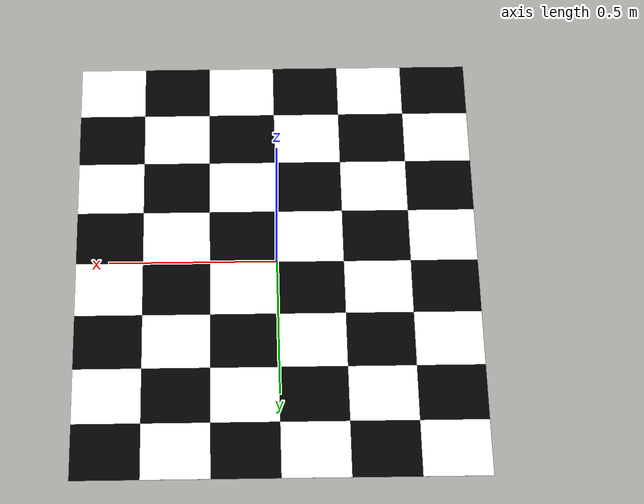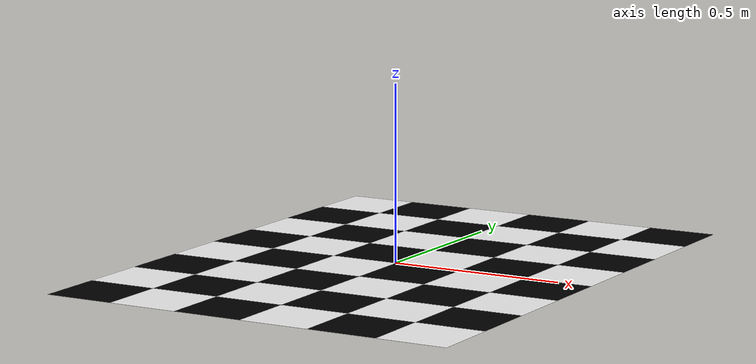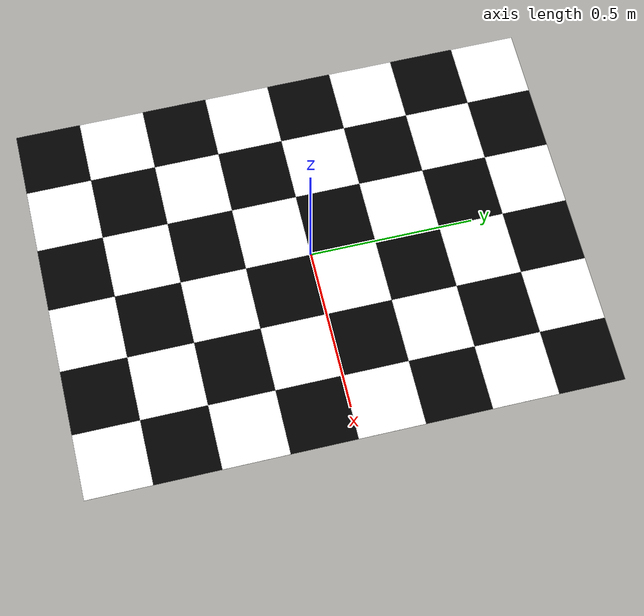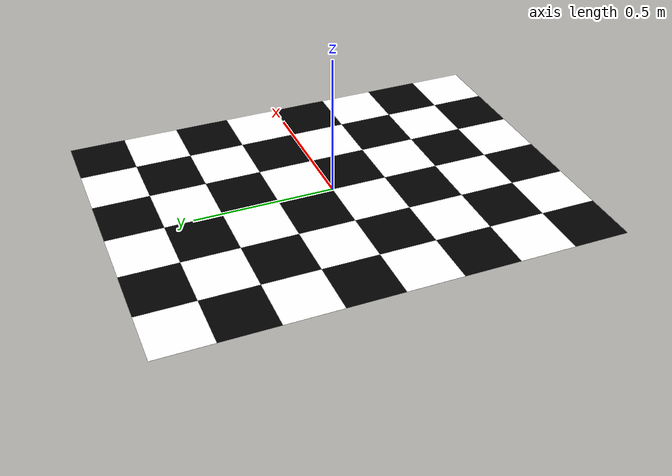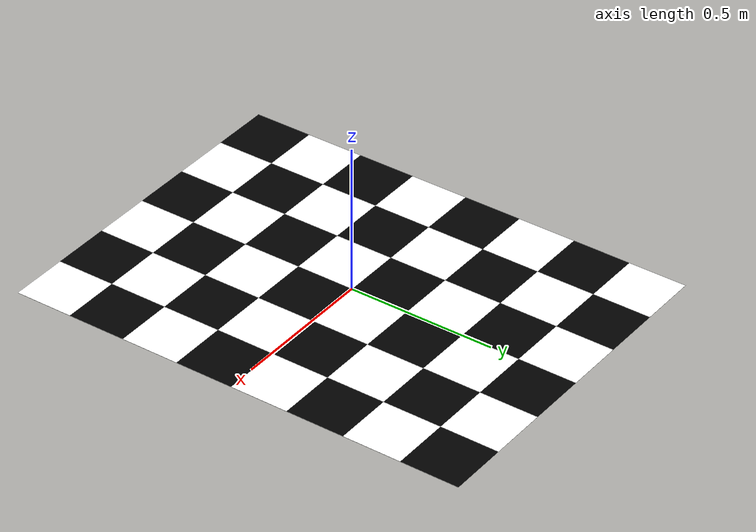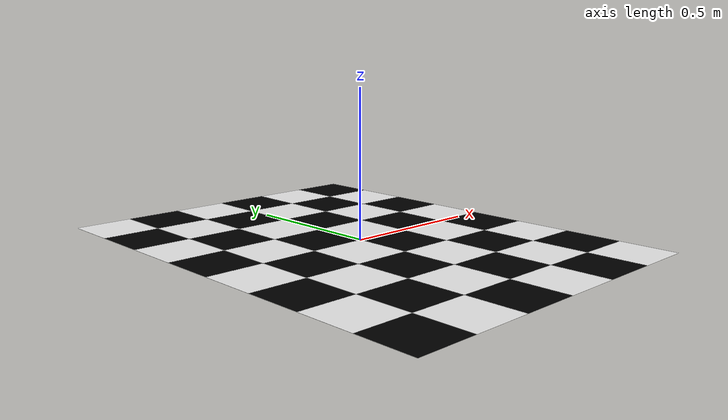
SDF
<?xml version="1.0"?>
<sdf version="1.4">
  <model name="checkerboard_6_8_0_2">
  <static>true</static>
  <link name="checkerboard_6_8_0_2_body">
      <visual name="checker_0_0">
        <pose>-0.5 -0.7 0 0 0 0</pose>
        <geometry>
          <box>
            <size>0.2 0.2 0.0002</size>
          </box>
        </geometry>
        <material>
          <ambient>0 0 0 1</ambient>
          <diffuse>0 0 0 1</diffuse>
          <specular>0 0 0 1</specular>
          <emissive>0 0 0 1</emissive>
        </material>
      </visual>
      <visual name="checker_0_1">
        <pose>-0.5 -0.5 0 0 0 0</pose>
        <geometry>
          <box>
            <size>0.2 0.2 0.0002</size>
          </box>
        </geometry>
        <material>
          <ambient>1 1 1 1</ambient>
          <diffuse>1 1 1 1</diffuse>
          <specular>1 1 1 1</specular>
          <emissive>1 1 1 1</emissive>
        </material>
      </visual>
      <visual name="checker_0_2">
        <pose>-0.5 -0.3 0 0 0 0</pose>
        <geometry>
          <box>
            <size>0.2 0.2 0.0002</size>
          </box>
        </geometry>
        <material>
          <ambient>0 0 0 1</ambient>
          <diffuse>0 0 0 1</diffuse>
          <specular>0 0 0 1</specular>
          <emissive>0 0 0 1</emissive>
        </material>
      </visual>
      <visual name="checker_0_3">
        <pose>-0.5 -0.1 0 0 0 0</pose>
        <geometry>
          <box>
            <size>0.2 0.2 0.0002</size>
          </box>
        </geometry>
        <material>
          <ambient>1 1 1 1</ambient>
          <diffuse>1 1 1 1</diffuse>
          <specular>1 1 1 1</specular>
          <emissive>1 1 1 1</emissive>
        </material>
      </visual>
      <visual name="checker_0_4">
        <pose>-0.5 0.1 0 0 0 0</pose>
        <geometry>
          <box>
            <size>0.2 0.2 0.0002</size>
          </box>
        </geometry>
        <material>
          <ambient>0 0 0 1</ambient>
          <diffuse>0 0 0 1</diffuse>
          <specular>0 0 0 1</specular>
          <emissive>0 0 0 1</emissive>
        </material>
      </visual>
      <visual name="checker_0_5">
        <pose>-0.5 0.3 0 0 0 0</pose>
        <geometry>
          <box>
            <size>0.2 0.2 0.0002</size>
          </box>
        </geometry>
        <material>
          <ambient>1 1 1 1</ambient>
          <diffuse>1 1 1 1</diffuse>
          <specular>1 1 1 1</specular>
          <emissive>1 1 1 1</emissive>
        </material>
      </visual>
      <visual name="checker_0_6">
        <pose>-0.5 0.5 0 0 0 0</pose>
        <geometry>
          <box>
            <size>0.2 0.2 0.0002</size>
          </box>
        </geometry>
        <material>
          <ambient>0 0 0 1</ambient>
          <diffuse>0 0 0 1</diffuse>
          <specular>0 0 0 1</specular>
          <emissive>0 0 0 1</emissive>
        </material>
      </visual>
      <visual name="checker_0_7">
        <pose>-0.5 0.7 0 0 0 0</pose>
        <geometry>
          <box>
            <size>0.2 0.2 0.0002</size>
          </box>
        </geometry>
        <material>
          <ambient>1 1 1 1</ambient>
          <diffuse>1 1 1 1</diffuse>
          <specular>1 1 1 1</specular>
          <emissive>1 1 1 1</emissive>
        </material>
      </visual>
      <visual name="checker_1_0">
        <pose>-0.3 -0.7 0 0 0 0</pose>
        <geometry>
          <box>
            <size>0.2 0.2 0.0002</size>
          </box>
        </geometry>
        <material>
          <ambient>1 1 1 1</ambient>
          <diffuse>1 1 1 1</diffuse>
          <specular>1 1 1 1</specular>
          <emissive>1 1 1 1</emissive>
        </material>
      </visual>
      <visual name="checker_1_1">
        <pose>-0.3 -0.5 0 0 0 0</pose>
        <geometry>
          <box>
            <size>0.2 0.2 0.0002</size>
          </box>
        </geometry>
        <material>
          <ambient>0 0 0 1</ambient>
          <diffuse>0 0 0 1</diffuse>
          <specular>0 0 0 1</specular>
          <emissive>0 0 0 1</emissive>
        </material>
      </visual>
      <visual name="checker_1_2">
        <pose>-0.3 -0.3 0 0 0 0</pose>
        <geometry>
          <box>
            <size>0.2 0.2 0.0002</size>
          </box>
        </geometry>
        <material>
          <ambient>1 1 1 1</ambient>
          <diffuse>1 1 1 1</diffuse>
          <specular>1 1 1 1</specular>
          <emissive>1 1 1 1</emissive>
        </material>
      </visual>
      <visual name="checker_1_3">
        <pose>-0.3 -0.1 0 0 0 0</pose>
        <geometry>
          <box>
            <size>0.2 0.2 0.0002</size>
          </box>
        </geometry>
        <material>
          <ambient>0 0 0 1</ambient>
          <diffuse>0 0 0 1</diffuse>
          <specular>0 0 0 1</specular>
          <emissive>0 0 0 1</emissive>
        </material>
      </visual>
      <visual name="checker_1_4">
        <pose>-0.3 0.1 0 0 0 0</pose>
        <geometry>
          <box>
            <size>0.2 0.2 0.0002</size>
          </box>
        </geometry>
        <material>
          <ambient>1 1 1 1</ambient>
          <diffuse>1 1 1 1</diffuse>
          <specular>1 1 1 1</specular>
          <emissive>1 1 1 1</emissive>
        </material>
      </visual>
      <visual name="checker_1_5">
        <pose>-0.3 0.3 0 0 0 0</pose>
        <geometry>
          <box>
            <size>0.2 0.2 0.0002</size>
          </box>
        </geometry>
        <material>
          <ambient>0 0 0 1</ambient>
          <diffuse>0 0 0 1</diffuse>
          <specular>0 0 0 1</specular>
          <emissive>0 0 0 1</emissive>
        </material>
      </visual>
      <visual name="checker_1_6">
        <pose>-0.3 0.5 0 0 0 0</pose>
        <geometry>
          <box>
            <size>0.2 0.2 0.0002</size>
          </box>
        </geometry>
        <material>
          <ambient>1 1 1 1</ambient>
          <diffuse>1 1 1 1</diffuse>
          <specular>1 1 1 1</specular>
          <emissive>1 1 1 1</emissive>
        </material>
      </visual>
      <visual name="checker_1_7">
        <pose>-0.3 0.7 0 0 0 0</pose>
        <geometry>
          <box>
            <size>0.2 0.2 0.0002</size>
          </box>
        </geometry>
        <material>
          <ambient>0 0 0 1</ambient>
          <diffuse>0 0 0 1</diffuse>
          <specular>0 0 0 1</specular>
          <emissive>0 0 0 1</emissive>
        </material>
      </visual>
      <visual name="checker_2_0">
        <pose>-0.1 -0.7 0 0 0 0</pose>
        <geometry>
          <box>
            <size>0.2 0.2 0.0002</size>
          </box>
        </geometry>
        <material>
          <ambient>0 0 0 1</ambient>
          <diffuse>0 0 0 1</diffuse>
          <specular>0 0 0 1</specular>
          <emissive>0 0 0 1</emissive>
        </material>
      </visual>
      <visual name="checker_2_1">
        <pose>-0.1 -0.5 0 0 0 0</pose>
        <geometry>
          <box>
            <size>0.2 0.2 0.0002</size>
          </box>
        </geometry>
        <material>
          <ambient>1 1 1 1</ambient>
          <diffuse>1 1 1 1</diffuse>
          <specular>1 1 1 1</specular>
          <emissive>1 1 1 1</emissive>
        </material>
      </visual>
      <visual name="checker_2_2">
        <pose>-0.1 -0.3 0 0 0 0</pose>
        <geometry>
          <box>
            <size>0.2 0.2 0.0002</size>
          </box>
        </geometry>
        <material>
          <ambient>0 0 0 1</ambient>
          <diffuse>0 0 0 1</diffuse>
          <specular>0 0 0 1</specular>
          <emissive>0 0 0 1</emissive>
        </material>
      </visual>
      <visual name="checker_2_3">
        <pose>-0.1 -0.1 0 0 0 0</pose>
        <geometry>
          <box>
            <size>0.2 0.2 0.0002</size>
          </box>
        </geometry>
        <material>
          <ambient>1 1 1 1</ambient>
          <diffuse>1 1 1 1</diffuse>
          <specular>1 1 1 1</specular>
          <emissive>1 1 1 1</emissive>
        </material>
      </visual>
      <visual name="checker_2_4">
        <pose>-0.1 0.1 0 0 0 0</pose>
        <geometry>
          <box>
            <size>0.2 0.2 0.0002</size>
          </box>
        </geometry>
        <material>
          <ambient>0 0 0 1</ambient>
          <diffuse>0 0 0 1</diffuse>
          <specular>0 0 0 1</specular>
          <emissive>0 0 0 1</emissive>
        </material>
      </visual>
      <visual name="checker_2_5">
        <pose>-0.1 0.3 0 0 0 0</pose>
        <geometry>
          <box>
            <size>0.2 0.2 0.0002</size>
          </box>
        </geometry>
        <material>
          <ambient>1 1 1 1</ambient>
          <diffuse>1 1 1 1</diffuse>
          <specular>1 1 1 1</specular>
          <emissive>1 1 1 1</emissive>
        </material>
      </visual>
      <visual name="checker_2_6">
        <pose>-0.1 0.5 0 0 0 0</pose>
        <geometry>
          <box>
            <size>0.2 0.2 0.0002</size>
          </box>
        </geometry>
        <material>
          <ambient>0 0 0 1</ambient>
          <diffuse>0 0 0 1</diffuse>
          <specular>0 0 0 1</specular>
          <emissive>0 0 0 1</emissive>
        </material>
      </visual>
      <visual name="checker_2_7">
        <pose>-0.1 0.7 0 0 0 0</pose>
        <geometry>
          <box>
            <size>0.2 0.2 0.0002</size>
          </box>
        </geometry>
        <material>
          <ambient>1 1 1 1</ambient>
          <diffuse>1 1 1 1</diffuse>
          <specular>1 1 1 1</specular>
          <emissive>1 1 1 1</emissive>
        </material>
      </visual>
      <visual name="checker_3_0">
        <pose>0.1 -0.7 0 0 0 0</pose>
        <geometry>
          <box>
            <size>0.2 0.2 0.0002</size>
          </box>
        </geometry>
        <material>
          <ambient>1 1 1 1</ambient>
          <diffuse>1 1 1 1</diffuse>
          <specular>1 1 1 1</specular>
          <emissive>1 1 1 1</emissive>
        </material>
      </visual>
      <visual name="checker_3_1">
        <pose>0.1 -0.5 0 0 0 0</pose>
        <geometry>
          <box>
            <size>0.2 0.2 0.0002</size>
          </box>
        </geometry>
        <material>
          <ambient>0 0 0 1</ambient>
          <diffuse>0 0 0 1</diffuse>
          <specular>0 0 0 1</specular>
          <emissive>0 0 0 1</emissive>
        </material>
      </visual>
      <visual name="checker_3_2">
        <pose>0.1 -0.3 0 0 0 0</pose>
        <geometry>
          <box>
            <size>0.2 0.2 0.0002</size>
          </box>
        </geometry>
        <material>
          <ambient>1 1 1 1</ambient>
          <diffuse>1 1 1 1</diffuse>
          <specular>1 1 1 1</specular>
          <emissive>1 1 1 1</emissive>
        </material>
      </visual>
      <visual name="checker_3_3">
        <pose>0.1 -0.1 0 0 0 0</pose>
        <geometry>
          <box>
            <size>0.2 0.2 0.0002</size>
          </box>
        </geometry>
        <material>
          <ambient>0 0 0 1</ambient>
          <diffuse>0 0 0 1</diffuse>
          <specular>0 0 0 1</specular>
          <emissive>0 0 0 1</emissive>
        </material>
      </visual>
      <visual name="checker_3_4">
        <pose>0.1 0.1 0 0 0 0</pose>
        <geometry>
          <box>
            <size>0.2 0.2 0.0002</size>
          </box>
        </geometry>
        <material>
          <ambient>1 1 1 1</ambient>
          <diffuse>1 1 1 1</diffuse>
          <specular>1 1 1 1</specular>
          <emissive>1 1 1 1</emissive>
        </material>
      </visual>
      <visual name="checker_3_5">
        <pose>0.1 0.3 0 0 0 0</pose>
        <geometry>
          <box>
            <size>0.2 0.2 0.0002</size>
          </box>
        </geometry>
        <material>
          <ambient>0 0 0 1</ambient>
          <diffuse>0 0 0 1</diffuse>
          <specular>0 0 0 1</specular>
          <emissive>0 0 0 1</emissive>
        </material>
      </visual>
      <visual name="checker_3_6">
        <pose>0.1 0.5 0 0 0 0</pose>
        <geometry>
          <box>
            <size>0.2 0.2 0.0002</size>
          </box>
        </geometry>
        <material>
          <ambient>1 1 1 1</ambient>
          <diffuse>1 1 1 1</diffuse>
          <specular>1 1 1 1</specular>
          <emissive>1 1 1 1</emissive>
        </material>
      </visual>
      <visual name="checker_3_7">
        <pose>0.1 0.7 0 0 0 0</pose>
        <geometry>
          <box>
            <size>0.2 0.2 0.0002</size>
          </box>
        </geometry>
        <material>
          <ambient>0 0 0 1</ambient>
          <diffuse>0 0 0 1</diffuse>
          <specular>0 0 0 1</specular>
          <emissive>0 0 0 1</emissive>
        </material>
      </visual>
      <visual name="checker_4_0">
        <pose>0.3 -0.7 0 0 0 0</pose>
        <geometry>
          <box>
            <size>0.2 0.2 0.0002</size>
          </box>
        </geometry>
        <material>
          <ambient>0 0 0 1</ambient>
          <diffuse>0 0 0 1</diffuse>
          <specular>0 0 0 1</specular>
          <emissive>0 0 0 1</emissive>
        </material>
      </visual>
      <visual name="checker_4_1">
        <pose>0.3 -0.5 0 0 0 0</pose>
        <geometry>
          <box>
            <size>0.2 0.2 0.0002</size>
          </box>
        </geometry>
        <material>
          <ambient>1 1 1 1</ambient>
          <diffuse>1 1 1 1</diffuse>
          <specular>1 1 1 1</specular>
          <emissive>1 1 1 1</emissive>
        </material>
      </visual>
      <visual name="checker_4_2">
        <pose>0.3 -0.3 0 0 0 0</pose>
        <geometry>
          <box>
            <size>0.2 0.2 0.0002</size>
          </box>
        </geometry>
        <material>
          <ambient>0 0 0 1</ambient>
          <diffuse>0 0 0 1</diffuse>
          <specular>0 0 0 1</specular>
          <emissive>0 0 0 1</emissive>
        </material>
      </visual>
      <visual name="checker_4_3">
        <pose>0.3 -0.1 0 0 0 0</pose>
        <geometry>
          <box>
            <size>0.2 0.2 0.0002</size>
          </box>
        </geometry>
        <material>
          <ambient>1 1 1 1</ambient>
          <diffuse>1 1 1 1</diffuse>
          <specular>1 1 1 1</specular>
          <emissive>1 1 1 1</emissive>
        </material>
      </visual>
      <visual name="checker_4_4">
        <pose>0.3 0.1 0 0 0 0</pose>
        <geometry>
          <box>
            <size>0.2 0.2 0.0002</size>
          </box>
        </geometry>
        <material>
          <ambient>0 0 0 1</ambient>
          <diffuse>0 0 0 1</diffuse>
          <specular>0 0 0 1</specular>
          <emissive>0 0 0 1</emissive>
        </material>
      </visual>
      <visual name="checker_4_5">
        <pose>0.3 0.3 0 0 0 0</pose>
        <geometry>
          <box>
            <size>0.2 0.2 0.0002</size>
          </box>
        </geometry>
        <material>
          <ambient>1 1 1 1</ambient>
          <diffuse>1 1 1 1</diffuse>
          <specular>1 1 1 1</specular>
          <emissive>1 1 1 1</emissive>
        </material>
      </visual>
      <visual name="checker_4_6">
        <pose>0.3 0.5 0 0 0 0</pose>
        <geometry>
          <box>
            <size>0.2 0.2 0.0002</size>
          </box>
        </geometry>
        <material>
          <ambient>0 0 0 1</ambient>
          <diffuse>0 0 0 1</diffuse>
          <specular>0 0 0 1</specular>
          <emissive>0 0 0 1</emissive>
        </material>
      </visual>
      <visual name="checker_4_7">
        <pose>0.3 0.7 0 0 0 0</pose>
        <geometry>
          <box>
            <size>0.2 0.2 0.0002</size>
          </box>
        </geometry>
        <material>
          <ambient>1 1 1 1</ambient>
          <diffuse>1 1 1 1</diffuse>
          <specular>1 1 1 1</specular>
          <emissive>1 1 1 1</emissive>
        </material>
      </visual>
      <visual name="checker_5_0">
        <pose>0.5 -0.7 0 0 0 0</pose>
        <geometry>
          <box>
            <size>0.2 0.2 0.0002</size>
          </box>
        </geometry>
        <material>
          <ambient>1 1 1 1</ambient>
          <diffuse>1 1 1 1</diffuse>
          <specular>1 1 1 1</specular>
          <emissive>1 1 1 1</emissive>
        </material>
      </visual>
      <visual name="checker_5_1">
        <pose>0.5 -0.5 0 0 0 0</pose>
        <geometry>
          <box>
            <size>0.2 0.2 0.0002</size>
          </box>
        </geometry>
        <material>
          <ambient>0 0 0 1</ambient>
          <diffuse>0 0 0 1</diffuse>
          <specular>0 0 0 1</specular>
          <emissive>0 0 0 1</emissive>
        </material>
      </visual>
      <visual name="checker_5_2">
        <pose>0.5 -0.3 0 0 0 0</pose>
        <geometry>
          <box>
            <size>0.2 0.2 0.0002</size>
          </box>
        </geometry>
        <material>
          <ambient>1 1 1 1</ambient>
          <diffuse>1 1 1 1</diffuse>
          <specular>1 1 1 1</specular>
          <emissive>1 1 1 1</emissive>
        </material>
      </visual>
      <visual name="checker_5_3">
        <pose>0.5 -0.1 0 0 0 0</pose>
        <geometry>
          <box>
            <size>0.2 0.2 0.0002</size>
          </box>
        </geometry>
        <material>
          <ambient>0 0 0 1</ambient>
          <diffuse>0 0 0 1</diffuse>
          <specular>0 0 0 1</specular>
          <emissive>0 0 0 1</emissive>
        </material>
      </visual>
      <visual name="checker_5_4">
        <pose>0.5 0.1 0 0 0 0</pose>
        <geometry>
          <box>
            <size>0.2 0.2 0.0002</size>
          </box>
        </geometry>
        <material>
          <ambient>1 1 1 1</ambient>
          <diffuse>1 1 1 1</diffuse>
          <specular>1 1 1 1</specular>
          <emissive>1 1 1 1</emissive>
        </material>
      </visual>
      <visual name="checker_5_5">
        <pose>0.5 0.3 0 0 0 0</pose>
        <geometry>
          <box>
            <size>0.2 0.2 0.0002</size>
          </box>
        </geometry>
        <material>
          <ambient>0 0 0 1</ambient>
          <diffuse>0 0 0 1</diffuse>
          <specular>0 0 0 1</specular>
          <emissive>0 0 0 1</emissive>
        </material>
      </visual>
      <visual name="checker_5_6">
        <pose>0.5 0.5 0 0 0 0</pose>
        <geometry>
          <box>
            <size>0.2 0.2 0.0002</size>
          </box>
        </geometry>
        <material>
          <ambient>1 1 1 1</ambient>
          <diffuse>1 1 1 1</diffuse>
          <specular>1 1 1 1</specular>
          <emissive>1 1 1 1</emissive>
        </material>
      </visual>
      <visual name="checker_5_7">
        <pose>0.5 0.7 0 0 0 0</pose>
        <geometry>
          <box>
            <size>0.2 0.2 0.0002</size>
          </box>
        </geometry>
        <material>
          <ambient>0 0 0 1</ambient>
          <diffuse>0 0 0 1</diffuse>
          <specular>0 0 0 1</specular>
          <emissive>0 0 0 1</emissive>
        </material>
      </visual>
      <collision name="collision">
        <geometry>
          <box>
            <size>1.2 1.6 0.0001</size>
          </box>
        </geometry>
      </collision>
    </link>
  </model>
</sdf>
